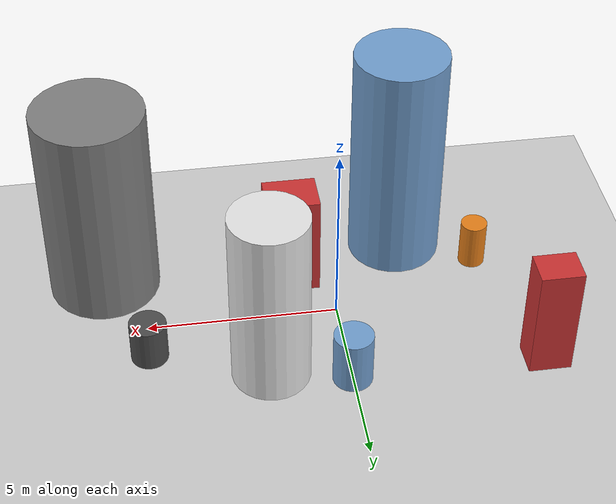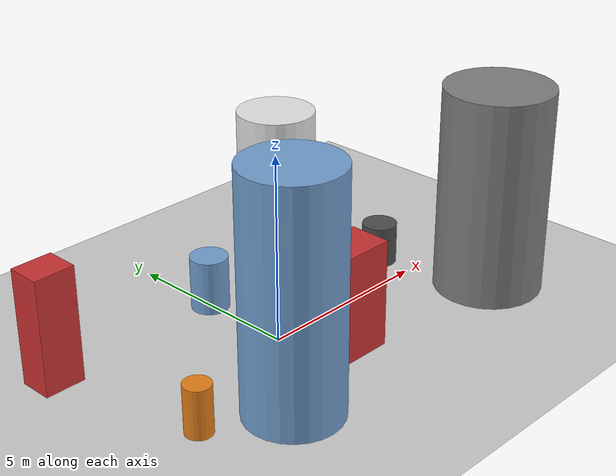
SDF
<?xml version='1.0'?>
<sdf version='1.6'>
  <world name='routeA_rl_v1__support_expansion__rl_train__mixed_3d_low_density_route__000124'>
    <!-- Sun light -->
    <light name='sun' type='directional'>
      <cast_shadows>1</cast_shadows>
      <pose>0 0 10 0 0 0</pose>
      <diffuse>0.8 0.8 0.8 1</diffuse>
      <specular>0.2 0.2 0.2 1</specular>
      <attenuation>
        <range>1000</range>
        <constant>0.9</constant>
        <linear>0.01</linear>
        <quadratic>0.001</quadratic>
      </attenuation>
      <direction>-0.5 0.1 -0.9</direction>
    </light>

    <!-- Ground plane -->
    <model name='ground_plane'>
      <static>1</static>
      <link name='link'>
        <collision name='collision'>
          <geometry>
            <plane>
              <normal>0 0 1</normal>
              <size>100 100</size>
            </plane>
          </geometry>
          <surface>
            <contact>
              <collide_bitmask>65535</collide_bitmask>
              <ode/>
            </contact>
            <friction>
              <ode>
                <mu>100</mu>
                <mu2>50</mu2>
              </ode>
              <torsional><ode/></torsional>
            </friction>
            <bounce/>
          </surface>
          <max_contacts>10</max_contacts>
        </collision>
        <visual name='visual'>
          <cast_shadows>0</cast_shadows>
          <geometry>
            <plane>
              <normal>0 0 1</normal>
              <size>100 100</size>
            </plane>
          </geometry>
          <material>
            <script>
              <uri>file://media/materials/scripts/gazebo.material</uri>
              <n>Gazebo/Grey</n>
            </script>
          </material>
        </visual>
      </link>
    </model>

    <!-- Environment -->
    <magnetic_field>6e-06 2.3e-05 -4.2e-05</magnetic_field>
    <atmosphere type='adiabatic'/>
    <physics name='default_physics' default='0' type='ode'>
      <gravity>0 0 -9.8</gravity>
      <max_step_size>0.004</max_step_size>
      <real_time_factor>1</real_time_factor>
      <real_time_update_rate>250</real_time_update_rate>
    </physics>
    <scene>
      <ambient>0.4 0.4 0.4 1</ambient>
      <background>0.7 0.7 0.7 1</background>
      <shadows>1</shadows>
    </scene>
    <wind/>
    <spherical_coordinates>
      <surface_model>EARTH_WGS84</surface_model>
      <latitude_deg>0</latitude_deg>
      <longitude_deg>0</longitude_deg>
      <elevation>0</elevation>
      <heading_deg>0</heading_deg>
    </spherical_coordinates>

    <!-- ============ OBSTACLES (8) ============ -->
    <model name='low_obs_0'>
      <static>1</static>
      <link name='link'>
        <visual name='visual'>
          <geometry>
            <cylinder>
              <radius>0.3511</radius>
              <length>1.2940</length>
            </cylinder>
          </geometry>
          <material>
            <script>
              <n>Gazebo/Orange</n>
              <uri>file://media/materials/scripts/gazebo.material</uri>
            </script>
            <ambient>0.9 0.5 0.1 1</ambient>
          </material>
        </visual>
        <collision name='collision'>
          <geometry>
            <cylinder>
              <radius>0.3511</radius>
              <length>1.2940</length>
            </cylinder>
          </geometry>
          <max_contacts>10</max_contacts>
          <surface>
            <contact><ode/></contact>
            <bounce/>
            <friction>
              <ode><mu>1</mu><mu2>1</mu2></ode>
              <torsional><ode/></torsional>
            </friction>
          </surface>
        </collision>
      </link>
      <pose>-4.0000 -1.5000 0.6470 0 0 0.0000</pose>
    </model>

    <model name='low_obs_1'>
      <static>1</static>
      <link name='link'>
        <visual name='visual'>
          <geometry>
            <cylinder>
              <radius>0.5103</radius>
              <length>1.4742</length>
            </cylinder>
          </geometry>
          <material>
            <script>
              <n>Gazebo/Blue</n>
              <uri>file://media/materials/scripts/gazebo.material</uri>
            </script>
            <ambient>0.447 0.624 0.812 1</ambient>
          </material>
        </visual>
        <collision name='collision'>
          <geometry>
            <cylinder>
              <radius>0.5103</radius>
              <length>1.4742</length>
            </cylinder>
          </geometry>
          <max_contacts>10</max_contacts>
          <surface>
            <contact><ode/></contact>
            <bounce/>
            <friction>
              <ode><mu>1</mu><mu2>1</mu2></ode>
              <torsional><ode/></torsional>
            </friction>
          </surface>
        </collision>
      </link>
      <pose>0.0000 2.5000 0.7371 0 0 0.0000</pose>
    </model>

    <model name='low_obs_2'>
      <static>1</static>
      <link name='link'>
        <visual name='visual'>
          <geometry>
            <cylinder>
              <radius>0.4805</radius>
              <length>1.1509</length>
            </cylinder>
          </geometry>
          <material>
            <script>
              <n>Gazebo/DarkGrey</n>
              <uri>file://media/materials/scripts/gazebo.material</uri>
            </script>
            <ambient>0.3 0.3 0.3 1</ambient>
          </material>
        </visual>
        <collision name='collision'>
          <geometry>
            <cylinder>
              <radius>0.4805</radius>
              <length>1.1509</length>
            </cylinder>
          </geometry>
          <max_contacts>10</max_contacts>
          <surface>
            <contact><ode/></contact>
            <bounce/>
            <friction>
              <ode><mu>1</mu><mu2>1</mu2></ode>
              <torsional><ode/></torsional>
            </friction>
          </surface>
        </collision>
      </link>
      <pose>5.0000 1.0000 0.5754 0 0 0.0000</pose>
    </model>

    <model name='tall_obs_0'>
      <static>1</static>
      <link name='link'>
        <visual name='visual'>
          <geometry>
            <cylinder>
              <radius>1.2438</radius>
              <length>6.2205</length>
            </cylinder>
          </geometry>
          <material>
            <script>
              <n>Gazebo/Blue</n>
              <uri>file://media/materials/scripts/gazebo.material</uri>
            </script>
            <ambient>0.447 0.624 0.812 1</ambient>
          </material>
        </visual>
        <collision name='collision'>
          <geometry>
            <cylinder>
              <radius>1.2438</radius>
              <length>6.2205</length>
            </cylinder>
          </geometry>
          <max_contacts>10</max_contacts>
          <surface>
            <contact><ode/></contact>
            <bounce/>
            <friction>
              <ode><mu>1</mu><mu2>1</mu2></ode>
              <torsional><ode/></torsional>
            </friction>
          </surface>
        </collision>
      </link>
      <pose>-2.0000 -2.5000 3.1103 0 0 0.0000</pose>
    </model>

    <model name='tall_obs_1'>
      <static>1</static>
      <link name='link'>
        <visual name='visual'>
          <geometry>
            <cylinder>
              <radius>1.0101</radius>
              <length>5.0433</length>
            </cylinder>
          </geometry>
          <material>
            <script>
              <n>Gazebo/White</n>
              <uri>file://media/materials/scripts/gazebo.material</uri>
            </script>
            <ambient>0.9 0.9 0.9 1</ambient>
          </material>
        </visual>
        <collision name='collision'>
          <geometry>
            <cylinder>
              <radius>1.0101</radius>
              <length>5.0433</length>
            </cylinder>
          </geometry>
          <max_contacts>10</max_contacts>
          <surface>
            <contact><ode/></contact>
            <bounce/>
            <friction>
              <ode><mu>1</mu><mu2>1</mu2></ode>
              <torsional><ode/></torsional>
            </friction>
          </surface>
        </collision>
      </link>
      <pose>2.0000 2.0000 2.5216 0 0 0.0000</pose>
    </model>

    <model name='tall_obs_2'>
      <static>1</static>
      <link name='link'>
        <visual name='visual'>
          <geometry>
            <cylinder>
              <radius>1.4655</radius>
              <length>5.6342</length>
            </cylinder>
          </geometry>
          <material>
            <script>
              <n>Gazebo/Grey</n>
              <uri>file://media/materials/scripts/gazebo.material</uri>
            </script>
            <ambient>0.5 0.5 0.5 1</ambient>
          </material>
        </visual>
        <collision name='collision'>
          <geometry>
            <cylinder>
              <radius>1.4655</radius>
              <length>5.6342</length>
            </cylinder>
          </geometry>
          <max_contacts>10</max_contacts>
          <surface>
            <contact><ode/></contact>
            <bounce/>
            <friction>
              <ode><mu>1</mu><mu2>1</mu2></ode>
              <torsional><ode/></torsional>
            </friction>
          </surface>
        </collision>
      </link>
      <pose>6.0000 -2.0000 2.8171 0 0 0.0000</pose>
    </model>

    <model name='med_obs_0'>
      <static>1</static>
      <link name='link'>
        <visual name='visual'>
          <geometry>
            <box>
              <size>1.0967 0.8983 3.0861</size>
            </box>
          </geometry>
          <material>
            <script>
              <n>Gazebo/Red</n>
              <uri>file://media/materials/scripts/gazebo.material</uri>
            </script>
            <ambient>0.8 0.2 0.2 1</ambient>
          </material>
        </visual>
        <collision name='collision'>
          <geometry>
            <box>
              <size>1.0967 0.8983 3.0861</size>
            </box>
          </geometry>
          <max_contacts>10</max_contacts>
          <surface>
            <contact><ode/></contact>
            <bounce/>
            <friction>
              <ode><mu>1</mu><mu2>1</mu2></ode>
              <torsional><ode/></torsional>
            </friction>
          </surface>
        </collision>
      </link>
      <pose>-5.0000 2.5000 1.5430 0 0 0.0000</pose>
    </model>

    <model name='med_obs_1'>
      <static>1</static>
      <link name='link'>
        <visual name='visual'>
          <geometry>
            <box>
              <size>1.4028 1.1086 2.8810</size>
            </box>
          </geometry>
          <material>
            <script>
              <n>Gazebo/Red</n>
              <uri>file://media/materials/scripts/gazebo.material</uri>
            </script>
            <ambient>0.8 0.2 0.2 1</ambient>
          </material>
        </visual>
        <collision name='collision'>
          <geometry>
            <box>
              <size>1.4028 1.1086 2.8810</size>
            </box>
          </geometry>
          <max_contacts>10</max_contacts>
          <surface>
            <contact><ode/></contact>
            <bounce/>
            <friction>
              <ode><mu>1</mu><mu2>1</mu2></ode>
              <torsional><ode/></torsional>
            </friction>
          </surface>
        </collision>
      </link>
      <pose>1.0000 -1.5000 1.4405 0 0 0.0000</pose>
    </model>

    <!-- GUI camera -->
    <gui fullscreen='0'>
      <camera name='user_camera'>
        <pose>-15 0 18 0 0.85 0.15</pose>
        <view_controller>orbit</view_controller>
        <projection_type>perspective</projection_type>
      </camera>
    </gui>
  </world>
</sdf>
